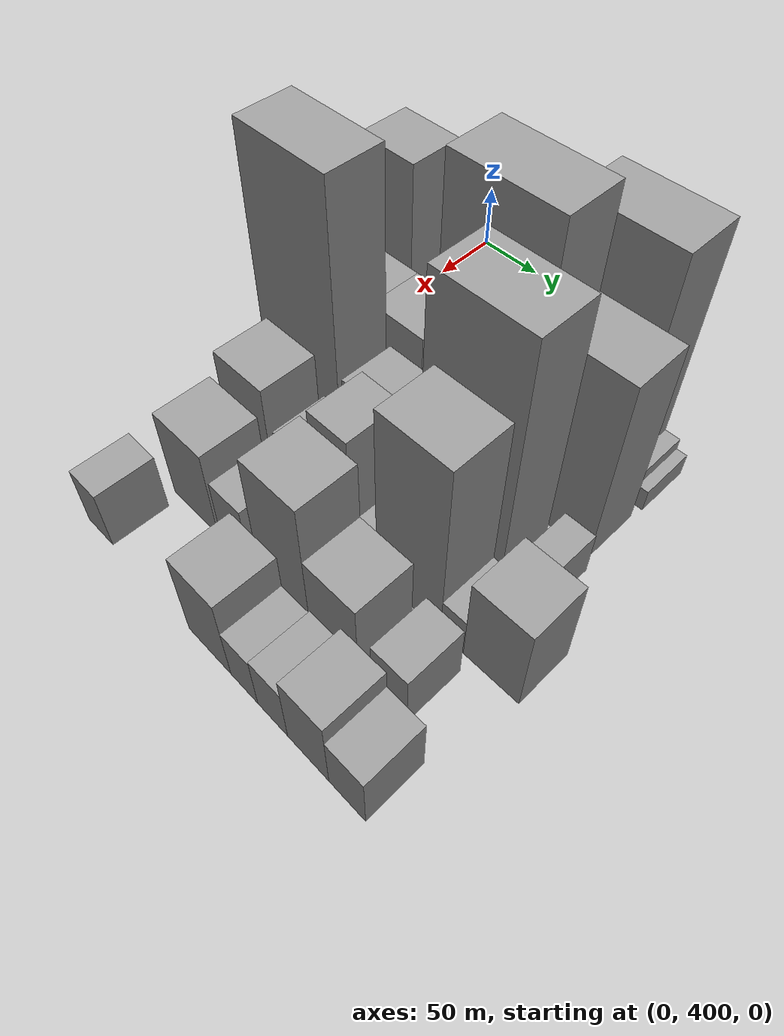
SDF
<sdf version="1.6">
 <world name="default">
  <model name="building_31">
   <static>1</static>
   <pose>100.0000 411.5241 0 0.000000 0.000000 0.000000</pose>
   <link name="link">
    <pose>0 0 73.50 0 0 0</pose>
    <collision name="collision"><geometry><box><size>40.0000 46.9688 147.0000</size></box></geometry></collision>
    <visual name="visual">
     <cast_shadows>0</cast_shadows>
     <geometry><box><size>40.0000 46.9688 147.0000</size></box></geometry>
     <material>
      <script>
       <uri>model://grey_wall/materials/scripts</uri>
       <uri>model://grey_wall/materials/textures</uri>
       <name>vrc/grey_wall</name>
      </script>
     </material>
    </visual>
   </link>
  </model>
  <model name="building_32">
   <static>1</static>
   <pose>100.0000 446.6023 0 0.000000 0.000000 0.000000</pose>
   <link name="link">
    <pose>0 0 19.50 0 0 0</pose>
    <collision name="collision"><geometry><box><size>40.0000 23.1874 39.0000</size></box></geometry></collision>
    <visual name="visual">
     <cast_shadows>0</cast_shadows>
     <geometry><box><size>40.0000 23.1874 39.0000</size></box></geometry>
     <material>
      <script>
       <uri>model://grey_wall/materials/scripts</uri>
       <uri>model://grey_wall/materials/textures</uri>
       <name>vrc/grey_wall</name>
      </script>
     </material>
    </visual>
   </link>
  </model>
  <model name="building_33">
   <static>1</static>
   <pose>100.0000 461.7570 0 0.000000 0.000000 0.000000</pose>
   <link name="link">
    <pose>0 0 7.50 0 0 0</pose>
    <collision name="collision"><geometry><box><size>40.0000 7.1221 15.0000</size></box></geometry></collision>
    <visual name="visual">
     <cast_shadows>0</cast_shadows>
     <geometry><box><size>40.0000 7.1221 15.0000</size></box></geometry>
     <material>
      <script>
       <uri>model://grey_wall/materials/scripts</uri>
       <uri>model://grey_wall/materials/textures</uri>
       <name>vrc/grey_wall</name>
      </script>
     </material>
    </visual>
   </link>
  </model>
  <model name="building_34">
   <static>1</static>
   <pose>100.0000 482.5764 0 0.000000 0.000000 0.000000</pose>
   <link name="link">
    <pose>0 0 33.00 0 0 0</pose>
    <collision name="collision"><geometry><box><size>40.0000 34.5167 66.0000</size></box></geometry></collision>
    <visual name="visual">
     <cast_shadows>0</cast_shadows>
     <geometry><box><size>40.0000 34.5167 66.0000</size></box></geometry>
     <material>
      <script>
       <uri>model://grey_wall/materials/scripts</uri>
       <uri>model://grey_wall/materials/textures</uri>
       <name>vrc/grey_wall</name>
      </script>
     </material>
    </visual>
   </link>
  </model>
  <model name="building_35">
   <static>1</static>
   <pose>100.0000 527.8713 0 0.000000 0.000000 0.000000</pose>
   <link name="link">
    <pose>0 0 37.50 0 0 0</pose>
    <collision name="collision"><geometry><box><size>40.0000 38.0731 75.0000</size></box></geometry></collision>
    <visual name="visual">
     <cast_shadows>0</cast_shadows>
     <geometry><box><size>40.0000 38.0731 75.0000</size></box></geometry>
     <material>
      <script>
       <uri>model://grey_wall/materials/scripts</uri>
       <uri>model://grey_wall/materials/textures</uri>
       <name>vrc/grey_wall</name>
      </script>
     </material>
    </visual>
   </link>
  </model>
  <model name="building_36">
   <static>1</static>
   <pose>100.0000 582.0169 0 0.000000 0.000000 0.000000</pose>
   <link name="link">
    <pose>0 0 94.50 0 0 0</pose>
    <collision name="collision"><geometry><box><size>40.0000 70.2179 189.0000</size></box></geometry></collision>
    <visual name="visual">
     <cast_shadows>0</cast_shadows>
     <geometry><box><size>40.0000 70.2179 189.0000</size></box></geometry>
     <material>
      <script>
       <uri>model://grey_wall/materials/scripts</uri>
       <uri>model://grey_wall/materials/textures</uri>
       <name>vrc/grey_wall</name>
      </script>
     </material>
    </visual>
   </link>
  </model>
  <model name="building_37">
   <static>1</static>
   <pose>100.0000 622.5473 0 0.000000 0.000000 0.000000</pose>
   <link name="link">
    <pose>0 0 13.50 0 0 0</pose>
    <collision name="collision"><geometry><box><size>40.0000 10.8430 27.0000</size></box></geometry></collision>
    <visual name="visual">
     <cast_shadows>0</cast_shadows>
     <geometry><box><size>40.0000 10.8430 27.0000</size></box></geometry>
     <material>
      <script>
       <uri>model://grey_wall/materials/scripts</uri>
       <uri>model://grey_wall/materials/textures</uri>
       <name>vrc/grey_wall</name>
      </script>
     </material>
    </visual>
   </link>
  </model>
  <model name="building_38">
   <static>1</static>
   <pose>100.0000 631.7565 0 0.000000 0.000000 0.000000</pose>
   <link name="link">
    <pose>0 0 9.00 0 0 0</pose>
    <collision name="collision"><geometry><box><size>40.0000 7.5754 18.0000</size></box></geometry></collision>
    <visual name="visual">
     <cast_shadows>0</cast_shadows>
     <geometry><box><size>40.0000 7.5754 18.0000</size></box></geometry>
     <material>
      <script>
       <uri>model://grey_wall/materials/scripts</uri>
       <uri>model://grey_wall/materials/textures</uri>
       <name>vrc/grey_wall</name>
      </script>
     </material>
    </visual>
   </link>
  </model>
  <model name="building_82">
   <static>1</static>
   <pose>149.0000 427.5921 0 0.000000 0.000000 0.000000</pose>
   <link name="link">
    <pose>0 0 39.00 0 0 0</pose>
    <collision name="collision"><geometry><box><size>40.0000 43.9089 78.0000</size></box></geometry></collision>
    <visual name="visual">
     <cast_shadows>0</cast_shadows>
     <geometry><box><size>40.0000 43.9089 78.0000</size></box></geometry>
     <material>
      <script>
       <uri>model://grey_wall/materials/scripts</uri>
       <uri>model://grey_wall/materials/textures</uri>
       <name>vrc/grey_wall</name>
      </script>
     </material>
    </visual>
   </link>
  </model>
  <model name="building_83">
   <static>1</static>
   <pose>149.0000 471.7200 0 0.000000 0.000000 0.000000</pose>
   <link name="link">
    <pose>0 0 39.00 0 0 0</pose>
    <collision name="collision"><geometry><box><size>40.0000 44.3469 78.0000</size></box></geometry></collision>
    <visual name="visual">
     <cast_shadows>0</cast_shadows>
     <geometry><box><size>40.0000 44.3469 78.0000</size></box></geometry>
     <material>
      <script>
       <uri>model://grey_wall/materials/scripts</uri>
       <uri>model://grey_wall/materials/textures</uri>
       <name>vrc/grey_wall</name>
      </script>
     </material>
    </visual>
   </link>
  </model>
  <model name="building_84">
   <static>1</static>
   <pose>149.0000 541.4995 0 0.000000 0.000000 0.000000</pose>
   <link name="link">
    <pose>0 0 108.00 0 0 0</pose>
    <collision name="collision"><geometry><box><size>40.0000 75.2121 216.0000</size></box></geometry></collision>
    <visual name="visual">
     <cast_shadows>0</cast_shadows>
     <geometry><box><size>40.0000 75.2121 216.0000</size></box></geometry>
     <material>
      <script>
       <uri>model://grey_wall/materials/scripts</uri>
       <uri>model://grey_wall/materials/textures</uri>
       <name>vrc/grey_wall</name>
      </script>
     </material>
    </visual>
   </link>
  </model>
  <model name="building_85">
   <static>1</static>
   <pose>149.0000 606.3390 0 0.000000 0.000000 0.000000</pose>
   <link name="link">
    <pose>0 0 73.50 0 0 0</pose>
    <collision name="collision"><geometry><box><size>40.0000 54.4669 147.0000</size></box></geometry></collision>
    <visual name="visual">
     <cast_shadows>0</cast_shadows>
     <geometry><box><size>40.0000 54.4669 147.0000</size></box></geometry>
     <material>
      <script>
       <uri>model://grey_wall/materials/scripts</uri>
       <uri>model://grey_wall/materials/textures</uri>
       <name>vrc/grey_wall</name>
      </script>
     </material>
    </visual>
   </link>
  </model>
  <model name="building_127">
   <static>1</static>
   <pose>198.0000 436.0220 0 0.000000 0.000000 0.000000</pose>
   <link name="link">
    <pose>0 0 103.50 0 0 0</pose>
    <collision name="collision"><geometry><box><size>40.0000 70.9859 207.0000</size></box></geometry></collision>
    <visual name="visual">
     <cast_shadows>0</cast_shadows>
     <geometry><box><size>40.0000 70.9859 207.0000</size></box></geometry>
     <material>
      <script>
       <uri>model://grey_wall/materials/scripts</uri>
       <uri>model://grey_wall/materials/textures</uri>
       <name>vrc/grey_wall</name>
      </script>
     </material>
    </visual>
   </link>
  </model>
  <model name="building_128">
   <static>1</static>
   <pose>198.0000 493.1059 0 0.000000 0.000000 0.000000</pose>
   <link name="link">
    <pose>0 0 33.00 0 0 0</pose>
    <collision name="collision"><geometry><box><size>40.0000 35.1818 66.0000</size></box></geometry></collision>
    <visual name="visual">
     <cast_shadows>0</cast_shadows>
     <geometry><box><size>40.0000 35.1818 66.0000</size></box></geometry>
     <material>
      <script>
       <uri>model://grey_wall/materials/scripts</uri>
       <uri>model://grey_wall/materials/textures</uri>
       <name>vrc/grey_wall</name>
      </script>
     </material>
    </visual>
   </link>
  </model>
  <model name="building_129">
   <static>1</static>
   <pose>198.0000 525.6254 0 0.000000 0.000000 0.000000</pose>
   <link name="link">
    <pose>0 0 27.00 0 0 0</pose>
    <collision name="collision"><geometry><box><size>40.0000 29.8573 54.0000</size></box></geometry></collision>
    <visual name="visual">
     <cast_shadows>0</cast_shadows>
     <geometry><box><size>40.0000 29.8573 54.0000</size></box></geometry>
     <material>
      <script>
       <uri>model://grey_wall/materials/scripts</uri>
       <uri>model://grey_wall/materials/textures</uri>
       <name>vrc/grey_wall</name>
      </script>
     </material>
    </visual>
   </link>
  </model>
  <model name="building_130">
   <static>1</static>
   <pose>198.0000 574.1125 0 0.000000 0.000000 0.000000</pose>
   <link name="link">
    <pose>0 0 97.50 0 0 0</pose>
    <collision name="collision"><geometry><box><size>40.0000 67.1168 195.0000</size></box></geometry></collision>
    <visual name="visual">
     <cast_shadows>0</cast_shadows>
     <geometry><box><size>40.0000 67.1168 195.0000</size></box></geometry>
     <material>
      <script>
       <uri>model://grey_wall/materials/scripts</uri>
       <uri>model://grey_wall/materials/textures</uri>
       <name>vrc/grey_wall</name>
      </script>
     </material>
    </visual>
   </link>
  </model>
  <model name="building_131">
   <static>1</static>
   <pose>198.0000 627.4312 0 0.000000 0.000000 0.000000</pose>
   <link name="link">
    <pose>0 0 18.00 0 0 0</pose>
    <collision name="collision"><geometry><box><size>40.0000 21.5207 36.0000</size></box></geometry></collision>
    <visual name="visual">
     <cast_shadows>0</cast_shadows>
     <geometry><box><size>40.0000 21.5207 36.0000</size></box></geometry>
     <material>
      <script>
       <uri>model://grey_wall/materials/scripts</uri>
       <uri>model://grey_wall/materials/textures</uri>
       <name>vrc/grey_wall</name>
      </script>
     </material>
    </visual>
   </link>
  </model>
  <model name="building_173">
   <static>1</static>
   <pose>247.0000 414.3676 0 0.000000 0.000000 0.000000</pose>
   <link name="link">
    <pose>0 0 13.50 0 0 0</pose>
    <collision name="collision"><geometry><box><size>40.0000 11.6138 27.0000</size></box></geometry></collision>
    <visual name="visual">
     <cast_shadows>0</cast_shadows>
     <geometry><box><size>40.0000 11.6138 27.0000</size></box></geometry>
     <material>
      <script>
       <uri>model://grey_wall/materials/scripts</uri>
       <uri>model://grey_wall/materials/textures</uri>
       <name>vrc/grey_wall</name>
      </script>
     </material>
    </visual>
   </link>
  </model>
  <model name="building_174">
   <static>1</static>
   <pose>247.0000 441.8218 0 0.000000 0.000000 0.000000</pose>
   <link name="link">
    <pose>0 0 42.00 0 0 0</pose>
    <collision name="collision"><geometry><box><size>40.0000 43.2946 84.0000</size></box></geometry></collision>
    <visual name="visual">
     <cast_shadows>0</cast_shadows>
     <geometry><box><size>40.0000 43.2946 84.0000</size></box></geometry>
     <material>
      <script>
       <uri>model://grey_wall/materials/scripts</uri>
       <uri>model://grey_wall/materials/textures</uri>
       <name>vrc/grey_wall</name>
      </script>
     </material>
    </visual>
   </link>
  </model>
  <model name="building_175">
   <static>1</static>
   <pose>247.0000 485.3087 0 0.000000 0.000000 0.000000</pose>
   <link name="link">
    <pose>0 0 27.00 0 0 0</pose>
    <collision name="collision"><geometry><box><size>40.0000 31.6792 54.0000</size></box></geometry></collision>
    <visual name="visual">
     <cast_shadows>0</cast_shadows>
     <geometry><box><size>40.0000 31.6792 54.0000</size></box></geometry>
     <material>
      <script>
       <uri>model://grey_wall/materials/scripts</uri>
       <uri>model://grey_wall/materials/textures</uri>
       <name>vrc/grey_wall</name>
      </script>
     </material>
    </visual>
   </link>
  </model>
  <model name="building_176">
   <static>1</static>
   <pose>247.0000 519.5720 0 0.000000 0.000000 0.000000</pose>
   <link name="link">
    <pose>0 0 51.00 0 0 0</pose>
    <collision name="collision"><geometry><box><size>40.0000 30.8474 102.0000</size></box></geometry></collision>
    <visual name="visual">
     <cast_shadows>0</cast_shadows>
     <geometry><box><size>40.0000 30.8474 102.0000</size></box></geometry>
     <material>
      <script>
       <uri>model://grey_wall/materials/scripts</uri>
       <uri>model://grey_wall/materials/textures</uri>
       <name>vrc/grey_wall</name>
      </script>
     </material>
    </visual>
   </link>
  </model>
  <model name="building_177">
   <static>1</static>
   <pose>247.0000 543.6154 0 0.000000 0.000000 0.000000</pose>
   <link name="link">
    <pose>0 0 15.00 0 0 0</pose>
    <collision name="collision"><geometry><box><size>40.0000 17.2395 30.0000</size></box></geometry></collision>
    <visual name="visual">
     <cast_shadows>0</cast_shadows>
     <geometry><box><size>40.0000 17.2395 30.0000</size></box></geometry>
     <material>
      <script>
       <uri>model://grey_wall/materials/scripts</uri>
       <uri>model://grey_wall/materials/textures</uri>
       <name>vrc/grey_wall</name>
      </script>
     </material>
    </visual>
   </link>
  </model>
  <model name="building_178">
   <static>1</static>
   <pose>247.0000 581.5856 0 0.000000 0.000000 0.000000</pose>
   <link name="link">
    <pose>0 0 73.50 0 0 0</pose>
    <collision name="collision"><geometry><box><size>40.0000 50.7009 147.0000</size></box></geometry></collision>
    <visual name="visual">
     <cast_shadows>0</cast_shadows>
     <geometry><box><size>40.0000 50.7009 147.0000</size></box></geometry>
     <material>
      <script>
       <uri>model://grey_wall/materials/scripts</uri>
       <uri>model://grey_wall/materials/textures</uri>
       <name>vrc/grey_wall</name>
      </script>
     </material>
    </visual>
   </link>
  </model>
  <model name="building_179">
   <static>1</static>
   <pose>247.0000 615.5650 0 0.000000 0.000000 0.000000</pose>
   <link name="link">
    <pose>0 0 16.50 0 0 0</pose>
    <collision name="collision"><geometry><box><size>40.0000 17.2580 33.0000</size></box></geometry></collision>
    <visual name="visual">
     <cast_shadows>0</cast_shadows>
     <geometry><box><size>40.0000 17.2580 33.0000</size></box></geometry>
     <material>
      <script>
       <uri>model://grey_wall/materials/scripts</uri>
       <uri>model://grey_wall/materials/textures</uri>
       <name>vrc/grey_wall</name>
      </script>
     </material>
    </visual>
   </link>
  </model>
  <model name="building_180">
   <static>1</static>
   <pose>247.0000 644.1094 0 0.000000 0.000000 0.000000</pose>
   <link name="link">
    <pose>0 0 36.00 0 0 0</pose>
    <collision name="collision"><geometry><box><size>40.0000 39.8307 72.0000</size></box></geometry></collision>
    <visual name="visual">
     <cast_shadows>0</cast_shadows>
     <geometry><box><size>40.0000 39.8307 72.0000</size></box></geometry>
     <material>
      <script>
       <uri>model://grey_wall/materials/scripts</uri>
       <uri>model://grey_wall/materials/textures</uri>
       <name>vrc/grey_wall</name>
      </script>
     </material>
    </visual>
   </link>
  </model>
  <model name="building_226">
   <static>1</static>
   <pose>296.0000 448.8718 0 0.000000 0.000000 0.000000</pose>
   <link name="link">
    <pose>0 0 37.50 0 0 0</pose>
    <collision name="collision"><geometry><box><size>40.0000 43.4319 75.0000</size></box></geometry></collision>
    <visual name="visual">
     <cast_shadows>0</cast_shadows>
     <geometry><box><size>40.0000 43.4319 75.0000</size></box></geometry>
     <material>
      <script>
       <uri>model://grey_wall/materials/scripts</uri>
       <uri>model://grey_wall/materials/textures</uri>
       <name>vrc/grey_wall</name>
      </script>
     </material>
    </visual>
   </link>
  </model>
  <model name="building_227">
   <static>1</static>
   <pose>296.0000 487.1956 0 0.000000 0.000000 0.000000</pose>
   <link name="link">
    <pose>0 0 27.00 0 0 0</pose>
    <collision name="collision"><geometry><box><size>40.0000 27.2157 54.0000</size></box></geometry></collision>
    <visual name="visual">
     <cast_shadows>0</cast_shadows>
     <geometry><box><size>40.0000 27.2157 54.0000</size></box></geometry>
     <material>
      <script>
       <uri>model://grey_wall/materials/scripts</uri>
       <uri>model://grey_wall/materials/textures</uri>
       <name>vrc/grey_wall</name>
      </script>
     </material>
    </visual>
   </link>
  </model>
  <model name="building_228">
   <static>1</static>
   <pose>296.0000 532.3442 0 0.000000 0.000000 0.000000</pose>
   <link name="link">
    <pose>0 0 55.50 0 0 0</pose>
    <collision name="collision"><geometry><box><size>40.0000 43.0815 111.0000</size></box></geometry></collision>
    <visual name="visual">
     <cast_shadows>0</cast_shadows>
     <geometry><box><size>40.0000 43.0815 111.0000</size></box></geometry>
     <material>
      <script>
       <uri>model://grey_wall/materials/scripts</uri>
       <uri>model://grey_wall/materials/textures</uri>
       <name>vrc/grey_wall</name>
      </script>
     </material>
    </visual>
   </link>
  </model>
  <model name="building_229">
   <static>1</static>
   <pose>296.0000 573.6216 0 0.000000 0.000000 0.000000</pose>
   <link name="link">
    <pose>0 0 33.00 0 0 0</pose>
    <collision name="collision"><geometry><box><size>40.0000 39.4734 66.0000</size></box></geometry></collision>
    <visual name="visual">
     <cast_shadows>0</cast_shadows>
     <geometry><box><size>40.0000 39.4734 66.0000</size></box></geometry>
     <material>
      <script>
       <uri>model://grey_wall/materials/scripts</uri>
       <uri>model://grey_wall/materials/textures</uri>
       <name>vrc/grey_wall</name>
      </script>
     </material>
    </visual>
   </link>
  </model>
  <model name="building_230">
   <static>1</static>
   <pose>296.0000 616.7722 0 0.000000 0.000000 0.000000</pose>
   <link name="link">
    <pose>0 0 22.50 0 0 0</pose>
    <collision name="collision"><geometry><box><size>40.0000 26.8278 45.0000</size></box></geometry></collision>
    <visual name="visual">
     <cast_shadows>0</cast_shadows>
     <geometry><box><size>40.0000 26.8278 45.0000</size></box></geometry>
     <material>
      <script>
       <uri>model://grey_wall/materials/scripts</uri>
       <uri>model://grey_wall/materials/textures</uri>
       <name>vrc/grey_wall</name>
      </script>
     </material>
    </visual>
   </link>
  </model>
  <model name="building_275">
   <static>1</static>
   <pose>345.0000 420.3077 0 0.000000 0.000000 0.000000</pose>
   <link name="link">
    <pose>0 0 24.00 0 0 0</pose>
    <collision name="collision"><geometry><box><size>40.0000 25.4065 48.0000</size></box></geometry></collision>
    <visual name="visual">
     <cast_shadows>0</cast_shadows>
     <geometry><box><size>40.0000 25.4065 48.0000</size></box></geometry>
     <material>
      <script>
       <uri>model://grey_wall/materials/scripts</uri>
       <uri>model://grey_wall/materials/textures</uri>
       <name>vrc/grey_wall</name>
      </script>
     </material>
    </visual>
   </link>
  </model>
  <model name="building_276">
   <static>1</static>
   <pose>345.0000 527.3598 0 0.000000 0.000000 0.000000</pose>
   <link name="link">
    <pose>0 0 36.00 0 0 0</pose>
    <collision name="collision"><geometry><box><size>40.0000 37.5659 72.0000</size></box></geometry></collision>
    <visual name="visual">
     <cast_shadows>0</cast_shadows>
     <geometry><box><size>40.0000 37.5659 72.0000</size></box></geometry>
     <material>
      <script>
       <uri>model://grey_wall/materials/scripts</uri>
       <uri>model://grey_wall/materials/textures</uri>
       <name>vrc/grey_wall</name>
      </script>
     </material>
    </visual>
   </link>
  </model>
  <model name="building_277">
   <static>1</static>
   <pose>345.0000 557.4934 0 0.000000 0.000000 0.000000</pose>
   <link name="link">
    <pose>0 0 22.50 0 0 0</pose>
    <collision name="collision"><geometry><box><size>40.0000 22.7012 45.0000</size></box></geometry></collision>
    <visual name="visual">
     <cast_shadows>0</cast_shadows>
     <geometry><box><size>40.0000 22.7012 45.0000</size></box></geometry>
     <material>
      <script>
       <uri>model://grey_wall/materials/scripts</uri>
       <uri>model://grey_wall/materials/textures</uri>
       <name>vrc/grey_wall</name>
      </script>
     </material>
    </visual>
   </link>
  </model>
  <model name="building_278">
   <static>1</static>
   <pose>345.0000 580.9661 0 0.000000 0.000000 0.000000</pose>
   <link name="link">
    <pose>0 0 24.00 0 0 0</pose>
    <collision name="collision"><geometry><box><size>40.0000 24.2442 48.0000</size></box></geometry></collision>
    <visual name="visual">
     <cast_shadows>0</cast_shadows>
     <geometry><box><size>40.0000 24.2442 48.0000</size></box></geometry>
     <material>
      <script>
       <uri>model://grey_wall/materials/scripts</uri>
       <uri>model://grey_wall/materials/textures</uri>
       <name>vrc/grey_wall</name>
      </script>
     </material>
    </visual>
   </link>
  </model>
  <model name="building_279">
   <static>1</static>
   <pose>345.0000 608.9293 0 0.000000 0.000000 0.000000</pose>
   <link name="link">
    <pose>0 0 31.50 0 0 0</pose>
    <collision name="collision"><geometry><box><size>40.0000 31.6824 63.0000</size></box></geometry></collision>
    <visual name="visual">
     <cast_shadows>0</cast_shadows>
     <geometry><box><size>40.0000 31.6824 63.0000</size></box></geometry>
     <material>
      <script>
       <uri>model://grey_wall/materials/scripts</uri>
       <uri>model://grey_wall/materials/textures</uri>
       <name>vrc/grey_wall</name>
      </script>
     </material>
    </visual>
   </link>
  </model>
  <model name="building_280">
   <static>1</static>
   <pose>345.0000 638.1054 0 0.000000 0.000000 0.000000</pose>
   <link name="link">
    <pose>0 0 24.00 0 0 0</pose>
    <collision name="collision"><geometry><box><size>40.0000 26.6698 48.0000</size></box></geometry></collision>
    <visual name="visual">
     <cast_shadows>0</cast_shadows>
     <geometry><box><size>40.0000 26.6698 48.0000</size></box></geometry>
     <material>
      <script>
       <uri>model://grey_wall/materials/scripts</uri>
       <uri>model://grey_wall/materials/textures</uri>
       <name>vrc/grey_wall</name>
      </script>
     </material>
    </visual>
   </link>
  </model>
 </world>
</sdf>
